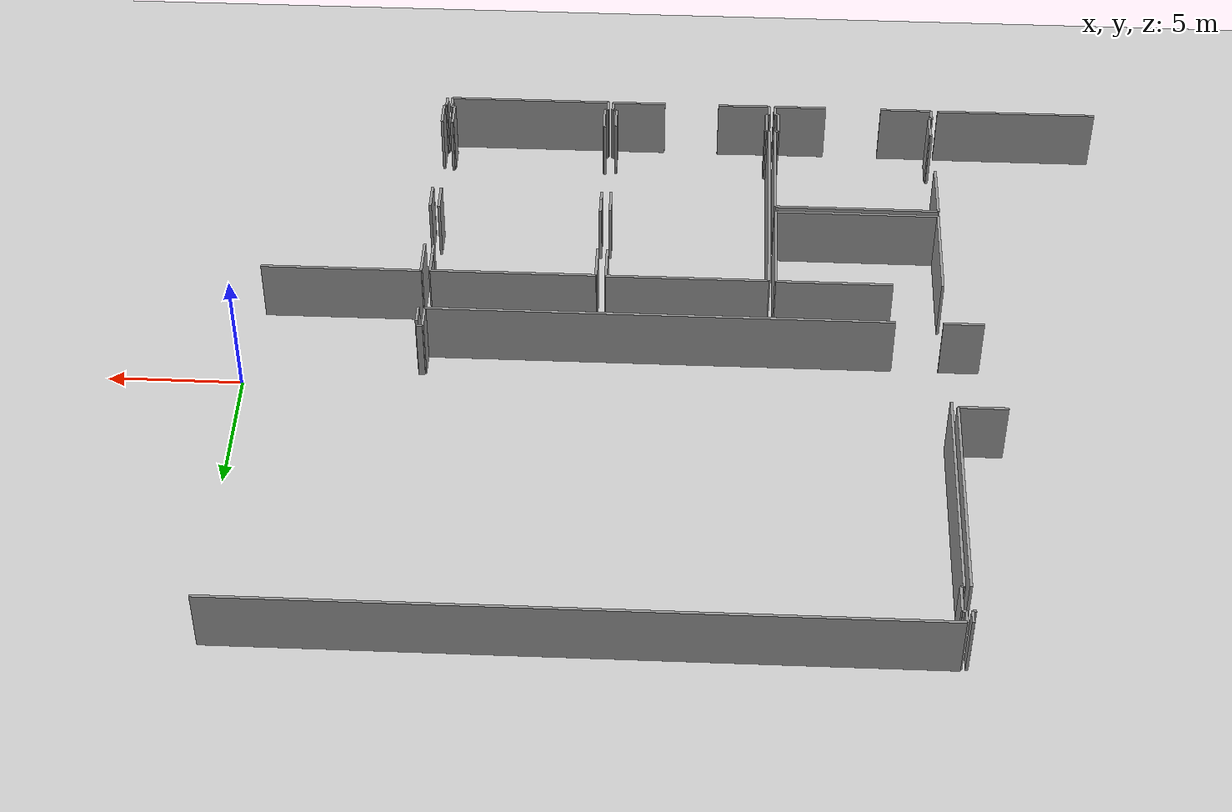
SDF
<sdf version="1.6">
 <world name="default">
  <model name="ground_plane">
   <static>1</static>
   <link name="link">
    <collision name="collision">
     <geometry><plane><normal>0 0 1</normal><size>100 100</size></plane></geometry>
     <surface><friction><ode><mu>100</mu><mu2>50</mu2></ode></friction></surface>
    </collision>
    <visual name="visual">
     <cast_shadows>0</cast_shadows>
     <geometry><plane><normal>0 0 1</normal><size>100 100</size></plane></geometry>
     <material>
      <script><uri>file://media/materials/scripts/gazebo.material</uri><name>Gazebo/Grey</name></script>
     </material>
    </visual>
   </link>
  </model>
  <model name="0510040941_A-40">
   <static>1</static>
   <link name="Wall_44">
    <collision name="Wall_44_Collision">
     <geometry><box><size>0.484485677868 0.1 2.5</size></box></geometry>
     <pose>0.242242838934 0 1.25 0 0 0</pose>
    </collision>
    <visual name="Wall_44_Visual">
     <pose>0.242242838934 0 1.25 0 0 0</pose>
     <geometry><box><size>0.484485677868 0.1 2.5</size></box></geometry>
     <material>
      <script><uri>file://media/materials/scripts/gazebo.material</uri><name>Gazebo/Grey</name></script>
      <ambient>1 1 1 1</ambient>
     </material>
    </visual>
    <pose>32.102756622 -0.0209267373948 0 0 0 -1.57079632679</pose>
   </link>
   <link name="Wall_45">
    <collision name="Wall_45_Collision">
     <geometry><box><size>0.128731142156 0.1 2.5</size></box></geometry>
     <pose>0.064365571078 0 1.25 0 0 0</pose>
    </collision>
    <visual name="Wall_45_Visual">
     <pose>0.064365571078 0 1.25 0 0 0</pose>
     <geometry><box><size>0.128731142156 0.1 2.5</size></box></geometry>
     <material>
      <script><uri>file://media/materials/scripts/gazebo.material</uri><name>Gazebo/Grey</name></script>
      <ambient>1 1 1 1</ambient>
     </material>
    </visual>
    <pose>32.102756622 -0.505412415263 0 0 0 3.14159265359</pose>
   </link>
   <link name="Wall_48">
    <collision name="Wall_48_Collision">
     <geometry><box><size>8.41064600204 0.1 2.5</size></box></geometry>
     <pose>4.20532300102 0 1.25 0 0 0</pose>
    </collision>
    <visual name="Wall_48_Visual">
     <pose>4.20532300102 0 1.25 0 0 0</pose>
     <geometry><box><size>8.41064600204 0.1 2.5</size></box></geometry>
     <material>
      <script><uri>file://media/materials/scripts/gazebo.material</uri><name>Gazebo/Grey</name></script>
      <ambient>1 1 1 1</ambient>
     </material>
    </visual>
    <pose>32.0952737281 -1.56531995713 0 0 0 -1.57079632679</pose>
   </link>
   <link name="Wall_49">
    <collision name="Wall_49_Collision">
     <geometry><box><size>1.80705548122 0.1 2.5</size></box></geometry>
     <pose>0.90352774061 0 1.25 0 0 0</pose>
    </collision>
    <visual name="Wall_49_Visual">
     <pose>0.90352774061 0 1.25 0 0 0</pose>
     <geometry><box><size>1.80705548122 0.1 2.5</size></box></geometry>
     <material>
      <script><uri>file://media/materials/scripts/gazebo.material</uri><name>Gazebo/Grey</name></script>
      <ambient>1 1 1 1</ambient>
     </material>
    </visual>
    <pose>32.0952737281 -9.97596595917 0 0 0 3.14159265359</pose>
   </link>
   <link name="Wall_55">
    <collision name="Wall_55_Collision">
     <geometry><box><size>8.65605955876 0.1 2.5</size></box></geometry>
     <pose>4.32802977938 0 1.25 0 0 0</pose>
    </collision>
    <visual name="Wall_55_Visual">
     <pose>4.32802977938 0 1.25 0 0 0</pose>
     <geometry><box><size>8.65605955876 0.1 2.5</size></box></geometry>
     <material>
      <script><uri>file://media/materials/scripts/gazebo.material</uri><name>Gazebo/Grey</name></script>
      <ambient>1 1 1 1</ambient>
     </material>
    </visual>
    <pose>32.3282580711 -10.2185892842 0 0 0 1.57079632679</pose>
   </link>
   <link name="Wall_56">
    <collision name="Wall_56_Collision">
     <geometry><box><size>0.109199520587 0.1 2.5</size></box></geometry>
     <pose>0.0545997602937 0 1.25 0 0 0</pose>
    </collision>
    <visual name="Wall_56_Visual">
     <pose>0.0545997602937 0 1.25 0 0 0</pose>
     <geometry><box><size>0.109199520587 0.1 2.5</size></box></geometry>
     <material>
      <script><uri>file://media/materials/scripts/gazebo.material</uri><name>Gazebo/Grey</name></script>
      <ambient>1 1 1 1</ambient>
     </material>
    </visual>
    <pose>32.3282580711 -1.56252972548 0 0 0 0.0</pose>
   </link>
   <link name="Wall_57">
    <collision name="Wall_57_Collision">
     <geometry><box><size>1.0591465696 0.1 2.5</size></box></geometry>
     <pose>0.5295732848 0 1.25 0 0 0</pose>
    </collision>
    <visual name="Wall_57_Visual">
     <pose>0.5295732848 0 1.25 0 0 0</pose>
     <geometry><box><size>1.0591465696 0.1 2.5</size></box></geometry>
     <material>
      <script><uri>file://media/materials/scripts/gazebo.material</uri><name>Gazebo/Grey</name></script>
      <ambient>1 1 1 1</ambient>
     </material>
    </visual>
    <pose>32.4374575916 -1.56252972548 0 0 0 1.57079632679</pose>
   </link>
   <link name="Wall_58">
    <collision name="Wall_58_Collision">
     <geometry><box><size>0.125053109523 0.1 2.5</size></box></geometry>
     <pose>0.0625265547615 0 1.25 0 0 0</pose>
    </collision>
    <visual name="Wall_58_Visual">
     <pose>0.0625265547615 0 1.25 0 0 0</pose>
     <geometry><box><size>0.125053109523 0.1 2.5</size></box></geometry>
     <material>
      <script><uri>file://media/materials/scripts/gazebo.material</uri><name>Gazebo/Grey</name></script>
      <ambient>1 1 1 1</ambient>
     </material>
    </visual>
    <pose>32.4374575916 -0.503383155879 0 0 0 3.14159265359</pose>
   </link>
   <link name="Wall_59">
    <collision name="Wall_59_Collision">
     <geometry><box><size>0.483597876887 0.1 2.5</size></box></geometry>
     <pose>0.241798938444 0 1.25 0 0 0</pose>
    </collision>
    <visual name="Wall_59_Visual">
     <pose>0.241798938444 0 1.25 0 0 0</pose>
     <geometry><box><size>0.483597876887 0.1 2.5</size></box></geometry>
     <material>
      <script><uri>file://media/materials/scripts/gazebo.material</uri><name>Gazebo/Grey</name></script>
      <ambient>1 1 1 1</ambient>
     </material>
    </visual>
    <pose>32.3124044821 -0.503383155879 0 0 0 1.57079632679</pose>
   </link>
   <link name="Wall_60">
    <collision name="Wall_60_Collision">
     <geometry><box><size>25.780599012 0.1 2.5</size></box></geometry>
     <pose>12.890299506 0 1.25 0 0 0</pose>
    </collision>
    <visual name="Wall_60_Visual">
     <pose>12.890299506 0 1.25 0 0 0</pose>
     <geometry><box><size>25.780599012 0.1 2.5</size></box></geometry>
     <material>
      <script><uri>file://media/materials/scripts/gazebo.material</uri><name>Gazebo/Grey</name></script>
      <ambient>1 1 1 1</ambient>
     </material>
    </visual>
    <pose>32.3124044821 -0.0197852789915 0 0 0 0.0</pose>
   </link>
   <link name="Wall_69">
    <collision name="Wall_69_Collision">
     <geometry><box><size>0.232096542015 0.1 2.5</size></box></geometry>
     <pose>0.116048271008 0 1.25 0 0 0</pose>
    </collision>
    <visual name="Wall_69_Visual">
     <pose>0.116048271008 0 1.25 0 0 0</pose>
     <geometry><box><size>0.232096542015 0.1 2.5</size></box></geometry>
     <material>
      <script><uri>file://media/materials/scripts/gazebo.material</uri><name>Gazebo/Grey</name></script>
      <ambient>1 1 1 1</ambient>
     </material>
    </visual>
    <pose>51.8033140342 -13.3179025068 0 0 0 3.14159265359</pose>
   </link>
   <link name="Wall_70">
    <collision name="Wall_70_Collision">
     <geometry><box><size>0.965546980525 0.1 2.5</size></box></geometry>
     <pose>0.482773490263 0 1.25 0 0 0</pose>
    </collision>
    <visual name="Wall_70_Visual">
     <pose>0.482773490263 0 1.25 0 0 0</pose>
     <geometry><box><size>0.965546980525 0.1 2.5</size></box></geometry>
     <material>
      <script><uri>file://media/materials/scripts/gazebo.material</uri><name>Gazebo/Grey</name></script>
      <ambient>1 1 1 1</ambient>
     </material>
    </visual>
    <pose>51.5712174922 -13.3179025068 0 0 0 -1.57079632679</pose>
   </link>
   <link name="Wall_71">
    <collision name="Wall_71_Collision">
     <geometry><box><size>17.3992504423 0.1 2.5</size></box></geometry>
     <pose>8.69962522116 0 1.25 0 0 0</pose>
    </collision>
    <visual name="Wall_71_Visual">
     <pose>8.69962522116 0 1.25 0 0 0</pose>
     <geometry><box><size>17.3992504423 0.1 2.5</size></box></geometry>
     <material>
      <script><uri>file://media/materials/scripts/gazebo.material</uri><name>Gazebo/Grey</name></script>
      <ambient>1 1 1 1</ambient>
     </material>
    </visual>
    <pose>51.5712174922 -14.2834494873 0 0 0 3.14159265359</pose>
   </link>
   <link name="Wall_72">
    <collision name="Wall_72_Collision">
     <geometry><box><size>1.51091043991 0.1 2.5</size></box></geometry>
     <pose>0.755455219953 0 1.25 0 0 0</pose>
    </collision>
    <visual name="Wall_72_Visual">
     <pose>0.755455219953 0 1.25 0 0 0</pose>
     <geometry><box><size>1.51091043991 0.1 2.5</size></box></geometry>
     <material>
      <script><uri>file://media/materials/scripts/gazebo.material</uri><name>Gazebo/Grey</name></script>
      <ambient>1 1 1 1</ambient>
     </material>
    </visual>
    <pose>32.4184332849 -14.2834494873 0 0 0 3.14159265359</pose>
   </link>
   <link name="Wall_86">
    <collision name="Wall_86_Collision">
     <geometry><box><size>6.25760179589 0.1 2.5</size></box></geometry>
     <pose>3.12880089795 0 1.25 0 0 0</pose>
    </collision>
    <visual name="Wall_86_Visual">
     <pose>3.12880089795 0 1.25 0 0 0</pose>
     <geometry><box><size>6.25760179589 0.1 2.5</size></box></geometry>
     <material>
      <script><uri>file://media/materials/scripts/gazebo.material</uri><name>Gazebo/Grey</name></script>
      <ambient>1 1 1 1</ambient>
     </material>
    </visual>
    <pose>32.0801811114 -26.6559707787 0 0 0 3.14159265359</pose>
   </link>
   <link name="Wall_91">
    <collision name="Wall_91_Collision">
     <geometry><box><size>3.9527436221 0.1 2.5</size></box></geometry>
     <pose>1.97637181105 0 1.25 0 0 0</pose>
    </collision>
    <visual name="Wall_91_Visual">
     <pose>1.97637181105 0 1.25 0 0 0</pose>
     <geometry><box><size>3.9527436221 0.1 2.5</size></box></geometry>
     <material>
      <script><uri>file://media/materials/scripts/gazebo.material</uri><name>Gazebo/Grey</name></script>
      <ambient>1 1 1 1</ambient>
     </material>
    </visual>
    <pose>32.3457604332 -20.2589842288 0 0 0 1.57079632679</pose>
   </link>
   <link name="Wall_92">
    <collision name="Wall_92_Collision">
     <geometry><box><size>4.38396124115 0.1 2.5</size></box></geometry>
     <pose>2.19198062057 0 1.25 0 0 0</pose>
    </collision>
    <visual name="Wall_92_Visual">
     <pose>2.19198062057 0 1.25 0 0 0</pose>
     <geometry><box><size>4.38396124115 0.1 2.5</size></box></geometry>
     <material>
      <script><uri>file://media/materials/scripts/gazebo.material</uri><name>Gazebo/Grey</name></script>
      <ambient>1 1 1 1</ambient>
     </material>
    </visual>
    <pose>34.1926401299 -16.3062406067 0 0 0 0.0</pose>
   </link>
   <link name="Wall_93">
    <collision name="Wall_93_Collision">
     <geometry><box><size>3.96111431706 0.1 2.5</size></box></geometry>
     <pose>1.98055715853 0 1.25 0 0 0</pose>
    </collision>
    <visual name="Wall_93_Visual">
     <pose>1.98055715853 0 1.25 0 0 0</pose>
     <geometry><box><size>3.96111431706 0.1 2.5</size></box></geometry>
     <material>
      <script><uri>file://media/materials/scripts/gazebo.material</uri><name>Gazebo/Grey</name></script>
      <ambient>1 1 1 1</ambient>
     </material>
    </visual>
    <pose>38.576601371 -16.3062406067 0 0 0 -1.57079632679</pose>
   </link>
   <link name="Wall_94">
    <collision name="Wall_94_Collision">
     <geometry><box><size>6.23084656049 0.1 2.5</size></box></geometry>
     <pose>3.11542328024 0 1.25 0 0 0</pose>
    </collision>
    <visual name="Wall_94_Visual">
     <pose>3.11542328024 0 1.25 0 0 0</pose>
     <geometry><box><size>6.23084656049 0.1 2.5</size></box></geometry>
     <material>
      <script><uri>file://media/materials/scripts/gazebo.material</uri><name>Gazebo/Grey</name></script>
      <ambient>1 1 1 1</ambient>
     </material>
    </visual>
    <pose>38.576601371 -20.2673549238 0 0 0 3.14024922499</pose>
   </link>
   <link name="Wall_95">
    <collision name="Wall_95_Collision">
     <geometry><box><size>6.26178714337 0.1 2.5</size></box></geometry>
     <pose>3.13089357169 0 1.25 0 0 0</pose>
    </collision>
    <visual name="Wall_95_Visual">
     <pose>3.13089357169 0 1.25 0 0 0</pose>
     <geometry><box><size>6.26178714337 0.1 2.5</size></box></geometry>
     <material>
      <script><uri>file://media/materials/scripts/gazebo.material</uri><name>Gazebo/Grey</name></script>
      <ambient>1 1 1 1</ambient>
     </material>
    </visual>
    <pose>32.3258483255 -20.563119479 0 0 0 0.0</pose>
   </link>
   <link name="Wall_96">
    <collision name="Wall_96_Collision">
     <geometry><box><size>4.55238977 0.1 2.5</size></box></geometry>
     <pose>2.276194885 0 1.25 0 0 0</pose>
    </collision>
    <visual name="Wall_96_Visual">
     <pose>2.276194885 0 1.25 0 0 0</pose>
     <geometry><box><size>4.55238977 0.1 2.5</size></box></geometry>
     <material>
      <script><uri>file://media/materials/scripts/gazebo.material</uri><name>Gazebo/Grey</name></script>
      <ambient>1 1 1 1</ambient>
     </material>
    </visual>
    <pose>38.5876354689 -20.563119479 0 0 0 -1.57079632679</pose>
   </link>
   <link name="Wall_97">
    <collision name="Wall_97_Collision">
     <geometry><box><size>0.11541412745 0.1 2.5</size></box></geometry>
     <pose>0.0577070637251 0 1.25 0 0 0</pose>
    </collision>
    <visual name="Wall_97_Visual">
     <pose>0.0577070637251 0 1.25 0 0 0</pose>
     <geometry><box><size>0.11541412745 0.1 2.5</size></box></geometry>
     <material>
      <script><uri>file://media/materials/scripts/gazebo.material</uri><name>Gazebo/Grey</name></script>
      <ambient>1 1 1 1</ambient>
     </material>
    </visual>
    <pose>38.5876354689 -25.115509249 0 0 0 3.14159265359</pose>
   </link>
   <link name="Wall_98">
    <collision name="Wall_98_Collision">
     <geometry><box><size>1.06751726456 0.1 2.5</size></box></geometry>
     <pose>0.533758632279 0 1.25 0 0 0</pose>
    </collision>
    <visual name="Wall_98_Visual">
     <pose>0.533758632279 0 1.25 0 0 0</pose>
     <geometry><box><size>1.06751726456 0.1 2.5</size></box></geometry>
     <material>
      <script><uri>file://media/materials/scripts/gazebo.material</uri><name>Gazebo/Grey</name></script>
      <ambient>1 1 1 1</ambient>
     </material>
    </visual>
    <pose>38.4722213415 -25.115509249 0 0 0 -1.57079632679</pose>
   </link>
   <link name="Wall_99">
    <collision name="Wall_99_Collision">
     <geometry><box><size>0.121755563024 0.1 2.5</size></box></geometry>
     <pose>0.0608777815122 0 1.25 0 0 0</pose>
    </collision>
    <visual name="Wall_99_Visual">
     <pose>0.0608777815122 0 1.25 0 0 0</pose>
     <geometry><box><size>0.121755563024 0.1 2.5</size></box></geometry>
     <material>
      <script><uri>file://media/materials/scripts/gazebo.material</uri><name>Gazebo/Grey</name></script>
      <ambient>1 1 1 1</ambient>
     </material>
    </visual>
    <pose>38.4722213415 -26.1830265135 0 0 0 0.0</pose>
   </link>
   <link name="Wall_100">
    <collision name="Wall_100_Collision">
     <geometry><box><size>0.491841743134 0.1 2.5</size></box></geometry>
     <pose>0.245920871567 0 1.25 0 0 0</pose>
    </collision>
    <visual name="Wall_100_Visual">
     <pose>0.245920871567 0 1.25 0 0 0</pose>
     <geometry><box><size>0.491841743134 0.1 2.5</size></box></geometry>
     <material>
      <script><uri>file://media/materials/scripts/gazebo.material</uri><name>Gazebo/Grey</name></script>
      <ambient>1 1 1 1</ambient>
     </material>
    </visual>
    <pose>38.5939769045 -26.1830265135 0 0 0 -1.57079632679</pose>
   </link>
   <link name="Wall_101">
    <collision name="Wall_101_Collision">
     <geometry><box><size>2.04308371329 0.1 2.5</size></box></geometry>
     <pose>1.02154185665 0 1.25 0 0 0</pose>
    </collision>
    <visual name="Wall_101_Visual">
     <pose>1.02154185665 0 1.25 0 0 0</pose>
     <geometry><box><size>2.04308371329 0.1 2.5</size></box></geometry>
     <material>
      <script><uri>file://media/materials/scripts/gazebo.material</uri><name>Gazebo/Grey</name></script>
      <ambient>1 1 1 1</ambient>
     </material>
    </visual>
    <pose>38.5939769045 -26.6748682567 0 0 0 3.14159265359</pose>
   </link>
   <link name="Wall_102">
    <collision name="Wall_102_Collision">
     <geometry><box><size>2.01771797099 0.1 2.5</size></box></geometry>
     <pose>1.0088589855 0 1.25 0 0 0</pose>
    </collision>
    <visual name="Wall_102_Visual">
     <pose>1.0088589855 0 1.25 0 0 0</pose>
     <geometry><box><size>2.01771797099 0.1 2.5</size></box></geometry>
     <material>
      <script><uri>file://media/materials/scripts/gazebo.material</uri><name>Gazebo/Grey</name></script>
      <ambient>1 1 1 1</ambient>
     </material>
    </visual>
    <pose>34.354346737 -26.6748682567 0 0 0 3.14159265359</pose>
   </link>
   <link name="Wall_103">
    <collision name="Wall_103_Collision">
     <geometry><box><size>0.495646604478 0.1 2.5</size></box></geometry>
     <pose>0.247823302239 0 1.25 0 0 0</pose>
    </collision>
    <visual name="Wall_103_Visual">
     <pose>0.247823302239 0 1.25 0 0 0</pose>
     <geometry><box><size>0.495646604478 0.1 2.5</size></box></geometry>
     <material>
      <script><uri>file://media/materials/scripts/gazebo.material</uri><name>Gazebo/Grey</name></script>
      <ambient>1 1 1 1</ambient>
     </material>
    </visual>
    <pose>32.336628766 -26.6748682567 0 0 0 1.57079632679</pose>
   </link>
   <link name="Wall_104">
    <collision name="Wall_104_Collision">
     <geometry><box><size>0.0986727375343 0.1 2.5</size></box></geometry>
     <pose>0.0493363687672 0 1.25 0 0 0</pose>
    </collision>
    <visual name="Wall_104_Visual">
     <pose>0.0493363687672 0 1.25 0 0 0</pose>
     <geometry><box><size>0.0986727375343 0.1 2.5</size></box></geometry>
     <material>
      <script><uri>file://media/materials/scripts/gazebo.material</uri><name>Gazebo/Grey</name></script>
      <ambient>1 1 1 1</ambient>
     </material>
    </visual>
    <pose>32.336628766 -26.1792216522 0 0 0 0.0</pose>
   </link>
   <link name="Wall_105">
    <collision name="Wall_105_Collision">
     <geometry><box><size>1.03022962338 0.1 2.5</size></box></geometry>
     <pose>0.515114811691 0 1.25 0 0 0</pose>
    </collision>
    <visual name="Wall_105_Visual">
     <pose>0.515114811691 0 1.25 0 0 0</pose>
     <geometry><box><size>1.03022962338 0.1 2.5</size></box></geometry>
     <material>
      <script><uri>file://media/materials/scripts/gazebo.material</uri><name>Gazebo/Grey</name></script>
      <ambient>1 1 1 1</ambient>
     </material>
    </visual>
    <pose>32.4353015036 -26.1792216522 0 0 0 1.57079632679</pose>
   </link>
   <link name="Wall_106">
    <collision name="Wall_106_Collision">
     <geometry><box><size>0.0965166494391 0.1 2.5</size></box></geometry>
     <pose>0.0482583247195 0 1.25 0 0 0</pose>
    </collision>
    <visual name="Wall_106_Visual">
     <pose>0.0482583247195 0 1.25 0 0 0</pose>
     <geometry><box><size>0.0965166494391 0.1 2.5</size></box></geometry>
     <material>
      <script><uri>file://media/materials/scripts/gazebo.material</uri><name>Gazebo/Grey</name></script>
      <ambient>1 1 1 1</ambient>
     </material>
    </visual>
    <pose>32.4353015036 -25.1489920288 0 0 0 3.14159265359</pose>
   </link>
   <link name="Wall_107">
    <collision name="Wall_107_Collision">
     <geometry><box><size>2.38847332855 0.1 2.5</size></box></geometry>
     <pose>1.19423666427 0 1.25 0 0 0</pose>
    </collision>
    <visual name="Wall_107_Visual">
     <pose>1.19423666427 0 1.25 0 0 0</pose>
     <geometry><box><size>2.38847332855 0.1 2.5</size></box></geometry>
     <material>
      <script><uri>file://media/materials/scripts/gazebo.material</uri><name>Gazebo/Grey</name></script>
      <ambient>1 1 1 1</ambient>
     </material>
    </visual>
    <pose>32.3387848541 -22.9515577736 0 0 0 1.57621258649</pose>
   </link>
   <link name="Wall_108">
    <collision name="Wall_108_Collision">
     <geometry><box><size>0.493110030249 0.1 2.5</size></box></geometry>
     <pose>0.246555015124 0 1.25 0 0 0</pose>
    </collision>
    <visual name="Wall_108_Visual">
     <pose>0.246555015124 0 1.25 0 0 0</pose>
     <geometry><box><size>0.493110030249 0.1 2.5</size></box></geometry>
     <material>
      <script><uri>file://media/materials/scripts/gazebo.material</uri><name>Gazebo/Grey</name></script>
      <ambient>1 1 1 1</ambient>
     </material>
    </visual>
    <pose>38.808697913 -26.6761365438 0 0 0 1.57079632679</pose>
   </link>
   <link name="Wall_109">
    <collision name="Wall_109_Collision">
     <geometry><box><size>0.130506744117 0.1 2.5</size></box></geometry>
     <pose>0.0652533720584 0 1.25 0 0 0</pose>
    </collision>
    <visual name="Wall_109_Visual">
     <pose>0.0652533720584 0 1.25 0 0 0</pose>
     <geometry><box><size>0.130506744117 0.1 2.5</size></box></geometry>
     <material>
      <script><uri>file://media/materials/scripts/gazebo.material</uri><name>Gazebo/Grey</name></script>
      <ambient>1 1 1 1</ambient>
     </material>
    </visual>
    <pose>38.808697913 -26.1830265135 0 0 0 0.0</pose>
   </link>
   <link name="Wall_110">
    <collision name="Wall_110_Collision">
     <geometry><box><size>1.0514100182 0.1 2.5</size></box></geometry>
     <pose>0.5257050091 0 1.25 0 0 0</pose>
    </collision>
    <visual name="Wall_110_Visual">
     <pose>0.5257050091 0 1.25 0 0 0</pose>
     <geometry><box><size>1.0514100182 0.1 2.5</size></box></geometry>
     <material>
      <script><uri>file://media/materials/scripts/gazebo.material</uri><name>Gazebo/Grey</name></script>
      <ambient>1 1 1 1</ambient>
     </material>
    </visual>
    <pose>38.9392046572 -26.1830265135 0 0 0 1.57079632679</pose>
   </link>
   <link name="Wall_111">
    <collision name="Wall_111_Collision">
     <geometry><box><size>0.101589797898 0.1 2.5</size></box></geometry>
     <pose>0.0507948989492 0 1.25 0 0 0</pose>
    </collision>
    <visual name="Wall_111_Visual">
     <pose>0.0507948989492 0 1.25 0 0 0</pose>
     <geometry><box><size>0.101589797898 0.1 2.5</size></box></geometry>
     <material>
      <script><uri>file://media/materials/scripts/gazebo.material</uri><name>Gazebo/Grey</name></script>
      <ambient>1 1 1 1</ambient>
     </material>
    </visual>
    <pose>38.9392046572 -25.1316164953 0 0 0 3.14159265359</pose>
   </link>
   <link name="Wall_112">
    <collision name="Wall_112_Collision">
     <geometry><box><size>8.8033076928 0.1 2.5</size></box></geometry>
     <pose>4.4016538464 0 1.25 0 0 0</pose>
    </collision>
    <visual name="Wall_112_Visual">
     <pose>4.4016538464 0 1.25 0 0 0</pose>
     <geometry><box><size>8.8033076928 0.1 2.5</size></box></geometry>
     <material>
      <script><uri>file://media/materials/scripts/gazebo.material</uri><name>Gazebo/Grey</name></script>
      <ambient>1 1 1 1</ambient>
     </material>
    </visual>
    <pose>38.8376148593 -25.1316164953 0 0 0 1.57079632679</pose>
   </link>
   <link name="Wall_113">
    <collision name="Wall_113_Collision">
     <geometry><box><size>6.1130170648 0.1 2.5</size></box></geometry>
     <pose>3.0565085324 0 1.25 0 0 0</pose>
    </collision>
    <visual name="Wall_113_Visual">
     <pose>3.0565085324 0 1.25 0 0 0</pose>
     <geometry><box><size>6.1130170648 0.1 2.5</size></box></geometry>
     <material>
      <script><uri>file://media/materials/scripts/gazebo.material</uri><name>Gazebo/Grey</name></script>
      <ambient>1 1 1 1</ambient>
     </material>
    </visual>
    <pose>38.8376148593 -16.3283088025 0 0 0 0.0</pose>
   </link>
   <link name="Wall_114">
    <collision name="Wall_114_Collision">
     <geometry><box><size>1.47933009075 0.1 2.5</size></box></geometry>
     <pose>0.739665045373 0 1.25 0 0 0</pose>
    </collision>
    <visual name="Wall_114_Visual">
     <pose>0.739665045373 0 1.25 0 0 0</pose>
     <geometry><box><size>1.47933009075 0.1 2.5</size></box></geometry>
     <material>
      <script><uri>file://media/materials/scripts/gazebo.material</uri><name>Gazebo/Grey</name></script>
      <ambient>1 1 1 1</ambient>
     </material>
    </visual>
    <pose>44.9506319241 -16.3283088025 0 0 0 -1.57079632679</pose>
   </link>
   <link name="Wall_115">
    <collision name="Wall_115_Collision">
     <geometry><box><size>1.07804404761 0.1 2.5</size></box></geometry>
     <pose>0.539022023806 0 1.25 0 0 0</pose>
    </collision>
    <visual name="Wall_115_Visual">
     <pose>0.539022023806 0 1.25 0 0 0</pose>
     <geometry><box><size>1.07804404761 0.1 2.5</size></box></geometry>
     <material>
      <script><uri>file://media/materials/scripts/gazebo.material</uri><name>Gazebo/Grey</name></script>
      <ambient>1 1 1 1</ambient>
     </material>
    </visual>
    <pose>44.9506319241 -20.037794956 0 0 0 -1.57079632679</pose>
   </link>
   <link name="Wall_116">
    <collision name="Wall_116_Collision">
     <geometry><box><size>0.995985871282 0.1 2.5</size></box></geometry>
     <pose>0.497992935641 0 1.25 0 0 0</pose>
    </collision>
    <visual name="Wall_116_Visual">
     <pose>0.497992935641 0 1.25 0 0 0</pose>
     <geometry><box><size>0.995985871282 0.1 2.5</size></box></geometry>
     <material>
      <script><uri>file://media/materials/scripts/gazebo.material</uri><name>Gazebo/Grey</name></script>
      <ambient>1 1 1 1</ambient>
     </material>
    </visual>
    <pose>44.9506319241 -25.1870406423 0 0 0 -1.57079632679</pose>
   </link>
   <link name="Wall_117">
    <collision name="Wall_117_Collision">
     <geometry><box><size>0.152321282492 0.1 2.5</size></box></geometry>
     <pose>0.076160641246 0 1.25 0 0 0</pose>
    </collision>
    <visual name="Wall_117_Visual">
     <pose>0.076160641246 0 1.25 0 0 0</pose>
     <geometry><box><size>0.152321282492 0.1 2.5</size></box></geometry>
     <material>
      <script><uri>file://media/materials/scripts/gazebo.material</uri><name>Gazebo/Grey</name></script>
      <ambient>1 1 1 1</ambient>
     </material>
    </visual>
    <pose>44.9506319241 -26.1830265135 0 0 0 0.0</pose>
   </link>
   <link name="Wall_118">
    <collision name="Wall_118_Collision">
     <geometry><box><size>0.471422320585 0.1 2.5</size></box></geometry>
     <pose>0.235711160292 0 1.25 0 0 0</pose>
    </collision>
    <visual name="Wall_118_Visual">
     <pose>0.235711160292 0 1.25 0 0 0</pose>
     <geometry><box><size>0.471422320585 0.1 2.5</size></box></geometry>
     <material>
      <script><uri>file://media/materials/scripts/gazebo.material</uri><name>Gazebo/Grey</name></script>
      <ambient>1 1 1 1</ambient>
     </material>
    </visual>
    <pose>45.1029532065 -26.1830265135 0 0 0 -1.57079632679</pose>
   </link>
   <link name="Wall_119">
    <collision name="Wall_119_Collision">
     <geometry><box><size>2.088488392 0.1 2.5</size></box></geometry>
     <pose>1.044244196 0 1.25 0 0 0</pose>
    </collision>
    <visual name="Wall_119_Visual">
     <pose>1.044244196 0 1.25 0 0 0</pose>
     <geometry><box><size>2.088488392 0.1 2.5</size></box></geometry>
     <material>
      <script><uri>file://media/materials/scripts/gazebo.material</uri><name>Gazebo/Grey</name></script>
      <ambient>1 1 1 1</ambient>
     </material>
    </visual>
    <pose>45.1029532065 -26.6544488341 0 0 0 3.14159265359</pose>
   </link>
   <link name="Wall_120">
    <collision name="Wall_120_Collision">
     <geometry><box><size>2.055373694 0.1 2.5</size></box></geometry>
     <pose>1.027686847 0 1.25 0 0 0</pose>
    </collision>
    <visual name="Wall_120_Visual">
     <pose>1.027686847 0 1.25 0 0 0</pose>
     <geometry><box><size>2.055373694 0.1 2.5</size></box></geometry>
     <material>
      <script><uri>file://media/materials/scripts/gazebo.material</uri><name>Gazebo/Grey</name></script>
      <ambient>1 1 1 1</ambient>
     </material>
    </visual>
    <pose>40.8639571826 -26.6544488341 0 0 0 -3.13104074656</pose>
   </link>
   <link name="Wall_121">
    <collision name="Wall_121_Collision">
     <geometry><box><size>0.66166538781 0.1 2.5</size></box></geometry>
     <pose>0.330832693905 0 1.25 0 0 0</pose>
    </collision>
    <visual name="Wall_121_Visual">
     <pose>0.330832693905 0 1.25 0 0 0</pose>
     <geometry><box><size>0.66166538781 0.1 2.5</size></box></geometry>
     <material>
      <script><uri>file://media/materials/scripts/gazebo.material</uri><name>Gazebo/Grey</name></script>
      <ambient>1 1 1 1</ambient>
     </material>
    </visual>
    <pose>45.3218595626 -20.6686409669 0 0 0 1.57079632679</pose>
   </link>
   <link name="Wall_122">
    <collision name="Wall_122_Collision">
     <geometry><box><size>1.47286182646 0.1 2.5</size></box></geometry>
     <pose>0.73643091323 0 1.25 0 0 0</pose>
    </collision>
    <visual name="Wall_122_Visual">
     <pose>0.73643091323 0 1.25 0 0 0</pose>
     <geometry><box><size>1.47286182646 0.1 2.5</size></box></geometry>
     <material>
      <script><uri>file://media/materials/scripts/gazebo.material</uri><name>Gazebo/Grey</name></script>
      <ambient>1 1 1 1</ambient>
     </material>
    </visual>
    <pose>45.3218595626 -17.8156291021 0 0 0 1.57079632679</pose>
   </link>
   <link name="Wall_123">
    <collision name="Wall_123_Collision">
     <geometry><box><size>6.24415795248 0.1 2.5</size></box></geometry>
     <pose>3.12207897624 0 1.25 0 0 0</pose>
    </collision>
    <visual name="Wall_123_Visual">
     <pose>3.12207897624 0 1.25 0 0 0</pose>
     <geometry><box><size>6.24415795248 0.1 2.5</size></box></geometry>
     <material>
      <script><uri>file://media/materials/scripts/gazebo.material</uri><name>Gazebo/Grey</name></script>
      <ambient>1 1 1 1</ambient>
     </material>
    </visual>
    <pose>45.3218595626 -16.3427672757 0 0 0 0.0</pose>
   </link>
   <link name="Wall_124">
    <collision name="Wall_124_Collision">
     <geometry><box><size>0.964532350834 0.1 2.5</size></box></geometry>
     <pose>0.482266175417 0 1.25 0 0 0</pose>
    </collision>
    <visual name="Wall_124_Visual">
     <pose>0.482266175417 0 1.25 0 0 0</pose>
     <geometry><box><size>0.964532350834 0.1 2.5</size></box></geometry>
     <material>
      <script><uri>file://media/materials/scripts/gazebo.material</uri><name>Gazebo/Grey</name></script>
      <ambient>1 1 1 1</ambient>
     </material>
    </visual>
    <pose>51.566017515 -16.3427672757 0 0 0 -1.57079632679</pose>
   </link>
   <link name="Wall_125">
    <collision name="Wall_125_Collision">
     <geometry><box><size>0.498690493554 0.1 2.5</size></box></geometry>
     <pose>0.249345246777 0 1.25 0 0 0</pose>
    </collision>
    <visual name="Wall_125_Visual">
     <pose>0.249345246777 0 1.25 0 0 0</pose>
     <geometry><box><size>0.498690493554 0.1 2.5</size></box></geometry>
     <material>
      <script><uri>file://media/materials/scripts/gazebo.material</uri><name>Gazebo/Grey</name></script>
      <ambient>1 1 1 1</ambient>
     </material>
    </visual>
    <pose>51.566017515 -17.3072996265 0 0 0 -1.57079632679</pose>
   </link>
   <link name="Wall_126">
    <collision name="Wall_126_Collision">
     <geometry><box><size>1.10911708193 0.1 2.5</size></box></geometry>
     <pose>0.554558540963 0 1.25 0 0 0</pose>
    </collision>
    <visual name="Wall_126_Visual">
     <pose>0.554558540963 0 1.25 0 0 0</pose>
     <geometry><box><size>1.10911708193 0.1 2.5</size></box></geometry>
     <material>
      <script><uri>file://media/materials/scripts/gazebo.material</uri><name>Gazebo/Grey</name></script>
      <ambient>1 1 1 1</ambient>
     </material>
    </visual>
    <pose>51.566017515 -20.0005073148 0 0 0 -1.57079632679</pose>
   </link>
   <link name="Wall_127">
    <collision name="Wall_127_Collision">
     <geometry><box><size>0.0960093345932 0.1 2.5</size></box></geometry>
     <pose>0.0480046672966 0 1.25 0 0 0</pose>
    </collision>
    <visual name="Wall_127_Visual">
     <pose>0.0480046672966 0 1.25 0 0 0</pose>
     <geometry><box><size>0.0960093345932 0.1 2.5</size></box></geometry>
     <material>
      <script><uri>file://media/materials/scripts/gazebo.material</uri><name>Gazebo/Grey</name></script>
      <ambient>1 1 1 1</ambient>
     </material>
    </visual>
    <pose>51.566017515 -25.1520359179 0 0 0 3.14159265359</pose>
   </link>
   <link name="Wall_128">
    <collision name="Wall_128_Collision">
     <geometry><box><size>0.999790732626 0.1 2.5</size></box></geometry>
     <pose>0.499895366313 0 1.25 0 0 0</pose>
    </collision>
    <visual name="Wall_128_Visual">
     <pose>0.499895366313 0 1.25 0 0 0</pose>
     <geometry><box><size>0.999790732626 0.1 2.5</size></box></geometry>
     <material>
      <script><uri>file://media/materials/scripts/gazebo.material</uri><name>Gazebo/Grey</name></script>
      <ambient>1 1 1 1</ambient>
     </material>
    </visual>
    <pose>51.4700081805 -25.1520359179 0 0 0 -1.57079632679</pose>
   </link>
   <link name="Wall_129">
    <collision name="Wall_129_Collision">
     <geometry><box><size>0.123404336274 0.1 2.5</size></box></geometry>
     <pose>0.0617021681368 0 1.25 0 0 0</pose>
    </collision>
    <visual name="Wall_129_Visual">
     <pose>0.0617021681368 0 1.25 0 0 0</pose>
     <geometry><box><size>0.123404336274 0.1 2.5</size></box></geometry>
     <material>
      <script><uri>file://media/materials/scripts/gazebo.material</uri><name>Gazebo/Grey</name></script>
      <ambient>1 1 1 1</ambient>
     </material>
    </visual>
    <pose>51.4700081805 -26.1518266505 0 0 0 0.0</pose>
   </link>
   <link name="Wall_130">
    <collision name="Wall_130_Collision">
     <geometry><box><size>0.509851420164 0.1 2.5</size></box></geometry>
     <pose>0.254925710082 0 1.25 0 0 0</pose>
    </collision>
    <visual name="Wall_130_Visual">
     <pose>0.254925710082 0 1.25 0 0 0</pose>
     <geometry><box><size>0.509851420164 0.1 2.5</size></box></geometry>
     <material>
      <script><uri>file://media/materials/scripts/gazebo.material</uri><name>Gazebo/Grey</name></script>
      <ambient>1 1 1 1</ambient>
     </material>
    </visual>
    <pose>51.5934125167 -26.1518266505 0 0 0 -1.57079632679</pose>
   </link>
   <link name="Wall_131">
    <collision name="Wall_131_Collision">
     <geometry><box><size>6.2929870064 0.1 2.5</size></box></geometry>
     <pose>3.1464935032 0 1.25 0 0 0</pose>
    </collision>
    <visual name="Wall_131_Visual">
     <pose>3.1464935032 0 1.25 0 0 0</pose>
     <geometry><box><size>6.2929870064 0.1 2.5</size></box></geometry>
     <material>
      <script><uri>file://media/materials/scripts/gazebo.material</uri><name>Gazebo/Grey</name></script>
      <ambient>1 1 1 1</ambient>
     </material>
    </visual>
    <pose>51.5934125167 -26.6616780707 0 0 0 3.14159265359</pose>
   </link>
   <link name="Wall_132">
    <collision name="Wall_132_Collision">
     <geometry><box><size>0.475988154198 0.1 2.5</size></box></geometry>
     <pose>0.237994077099 0 1.25 0 0 0</pose>
    </collision>
    <visual name="Wall_132_Visual">
     <pose>0.237994077099 0 1.25 0 0 0</pose>
     <geometry><box><size>0.475988154198 0.1 2.5</size></box></geometry>
     <material>
      <script><uri>file://media/materials/scripts/gazebo.material</uri><name>Gazebo/Grey</name></script>
      <ambient>1 1 1 1</ambient>
     </material>
    </visual>
    <pose>45.3004255103 -26.6616780707 0 0 0 1.57079632679</pose>
   </link>
   <link name="Wall_133">
    <collision name="Wall_133_Collision">
     <geometry><box><size>0.119218988795 0.1 2.5</size></box></geometry>
     <pose>0.0596094943973 0 1.25 0 0 0</pose>
    </collision>
    <visual name="Wall_133_Visual">
     <pose>0.0596094943973 0 1.25 0 0 0</pose>
     <geometry><box><size>0.119218988795 0.1 2.5</size></box></geometry>
     <material>
      <script><uri>file://media/materials/scripts/gazebo.material</uri><name>Gazebo/Grey</name></script>
      <ambient>1 1 1 1</ambient>
     </material>
    </visual>
    <pose>45.3004255103 -26.1856899165 0 0 0 0.0</pose>
   </link>
   <link name="Wall_134">
    <collision name="Wall_134_Collision">
     <geometry><box><size>1.04278566582 0.1 2.5</size></box></geometry>
     <pose>0.52139283291 0 1.25 0 0 0</pose>
    </collision>
    <visual name="Wall_134_Visual">
     <pose>0.52139283291 0 1.25 0 0 0</pose>
     <geometry><box><size>1.04278566582 0.1 2.5</size></box></geometry>
     <material>
      <script><uri>file://media/materials/scripts/gazebo.material</uri><name>Gazebo/Grey</name></script>
      <ambient>1 1 1 1</ambient>
     </material>
    </visual>
    <pose>45.4196444991 -26.1856899165 0 0 0 1.57079632679</pose>
   </link>
   <link name="Wall_135">
    <collision name="Wall_135_Collision">
     <geometry><box><size>0.0989263949573 0.1 2.5</size></box></geometry>
     <pose>0.0494631974787 0 1.25 0 0 0</pose>
    </collision>
    <visual name="Wall_135_Visual">
     <pose>0.0494631974787 0 1.25 0 0 0</pose>
     <geometry><box><size>0.0989263949573 0.1 2.5</size></box></geometry>
     <material>
      <script><uri>file://media/materials/scripts/gazebo.material</uri><name>Gazebo/Grey</name></script>
      <ambient>1 1 1 1</ambient>
     </material>
    </visual>
    <pose>45.4196444991 -25.1429042507 0 0 0 3.14159265359</pose>
   </link>
   <link name="Wall_136">
    <collision name="Wall_136_Collision">
     <geometry><box><size>0.44922874626 0.1 2.5</size></box></geometry>
     <pose>0.22461437313 0 1.25 0 0 0</pose>
    </collision>
    <visual name="Wall_136_Visual">
     <pose>0.22461437313 0 1.25 0 0 0</pose>
     <geometry><box><size>0.44922874626 0.1 2.5</size></box></geometry>
     <material>
      <script><uri>file://media/materials/scripts/gazebo.material</uri><name>Gazebo/Grey</name></script>
      <ambient>1 1 1 1</ambient>
     </material>
    </visual>
    <pose>45.3207181042 -21.117868263 0 0 0 1.56825539494</pose>
   </link>
   <link name="Wall_137">
    <collision name="Wall_137_Collision">
     <geometry><box><size>1.07398552884 0.1 2.5</size></box></geometry>
     <pose>0.536992764422 0 1.25 0 0 0</pose>
    </collision>
    <visual name="Wall_137_Visual">
     <pose>0.536992764422 0 1.25 0 0 0</pose>
     <geometry><box><size>1.07398552884 0.1 2.5</size></box></geometry>
     <material>
      <script><uri>file://media/materials/scripts/gazebo.material</uri><name>Gazebo/Grey</name></script>
      <ambient>1 1 1 1</ambient>
     </material>
    </visual>
    <pose>51.9016062856 -21.1049317344 0 0 0 1.57079632679</pose>
   </link>
   <link name="Wall_138">
    <collision name="Wall_138_Collision">
     <geometry><box><size>1.51154458346 0.1 2.5</size></box></geometry>
     <pose>0.755772291731 0 1.25 0 0 0</pose>
    </collision>
    <visual name="Wall_138_Visual">
     <pose>0.755772291731 0 1.25 0 0 0</pose>
     <geometry><box><size>1.51154458346 0.1 2.5</size></box></geometry>
     <material>
      <script><uri>file://media/materials/scripts/gazebo.material</uri><name>Gazebo/Grey</name></script>
      <ambient>1 1 1 1</ambient>
     </material>
    </visual>
    <pose>51.9016062856 -17.8322436633 0 0 0 1.57079632679</pose>
   </link>
   <link name="Wall_139">
    <collision name="Wall_139_Collision">
     <geometry><box><size>6.05378805654 0.1 2.5</size></box></geometry>
     <pose>3.02689402827 0 1.25 0 0 0</pose>
    </collision>
    <visual name="Wall_139_Visual">
     <pose>3.02689402827 0 1.25 0 0 0</pose>
     <geometry><box><size>6.05378805654 0.1 2.5</size></box></geometry>
     <material>
      <script><uri>file://media/materials/scripts/gazebo.material</uri><name>Gazebo/Grey</name></script>
      <ambient>1 1 1 1</ambient>
     </material>
    </visual>
    <pose>51.9016062856 -16.3206990799 0 0 0 0.0</pose>
   </link>
   <link name="Wall_146">
    <collision name="Wall_146_Collision">
     <geometry><box><size>0.475988154198 0.1 2.5</size></box></geometry>
     <pose>0.237994077099 0 1.25 0 0 0</pose>
    </collision>
    <visual name="Wall_146_Visual">
     <pose>0.237994077099 0 1.25 0 0 0</pose>
     <geometry><box><size>0.475988154198 0.1 2.5</size></box></geometry>
     <material>
      <script><uri>file://media/materials/scripts/gazebo.material</uri><name>Gazebo/Grey</name></script>
      <ambient>1 1 1 1</ambient>
     </material>
    </visual>
    <pose>51.7986213719 -26.6568585796 0 0 0 1.57079632679</pose>
   </link>
   <link name="Wall_147">
    <collision name="Wall_147_Collision">
     <geometry><box><size>0.104506858263 0.1 2.5</size></box></geometry>
     <pose>0.0522534291313 0 1.25 0 0 0</pose>
    </collision>
    <visual name="Wall_147_Visual">
     <pose>0.0522534291313 0 1.25 0 0 0</pose>
     <geometry><box><size>0.104506858263 0.1 2.5</size></box></geometry>
     <material>
      <script><uri>file://media/materials/scripts/gazebo.material</uri><name>Gazebo/Grey</name></script>
      <ambient>1 1 1 1</ambient>
     </material>
    </visual>
    <pose>51.7986213719 -26.1808704254 0 0 0 0.0</pose>
   </link>
   <link name="Wall_148">
    <collision name="Wall_148_Collision">
     <geometry><box><size>0.00431217619045 0.1 2.5</size></box></geometry>
     <pose>0.00215608809523 0 1.25 0 0 0</pose>
    </collision>
    <visual name="Wall_148_Visual">
     <pose>0.00215608809523 0 1.25 0 0 0</pose>
     <geometry><box><size>0.00431217619045 0.1 2.5</size></box></geometry>
     <material>
      <script><uri>file://media/materials/scripts/gazebo.material</uri><name>Gazebo/Grey</name></script>
      <ambient>1 1 1 1</ambient>
     </material>
    </visual>
    <pose>51.9031282302 -26.1808704254 0 0 0 3.14159265359</pose>
   </link>
   <link name="Wall_149">
    <collision name="Wall_149_Collision">
     <geometry><box><size>0.99332246834 0.1 2.5</size></box></geometry>
     <pose>0.49666123417 0 1.25 0 0 0</pose>
    </collision>
    <visual name="Wall_149_Visual">
     <pose>0.49666123417 0 1.25 0 0 0</pose>
     <geometry><box><size>0.99332246834 0.1 2.5</size></box></geometry>
     <material>
      <script><uri>file://media/materials/scripts/gazebo.material</uri><name>Gazebo/Grey</name></script>
      <ambient>1 1 1 1</ambient>
     </material>
    </visual>
    <pose>51.898816054 -26.1808704254 0 0 0 1.57079632679</pose>
   </link>
   <link name="Wall_150">
    <collision name="Wall_150_Collision">
     <geometry><box><size>0.0384037673455 0.1 2.5</size></box></geometry>
     <pose>0.0192018836727 0 1.25 0 0 0</pose>
    </collision>
    <visual name="Wall_150_Visual">
     <pose>0.0192018836727 0 1.25 0 0 0</pose>
     <geometry><box><size>0.0384037673455 0.1 2.5</size></box></geometry>
     <material>
      <script><uri>file://media/materials/scripts/gazebo.material</uri><name>Gazebo/Grey</name></script>
      <ambient>1 1 1 1</ambient>
     </material>
    </visual>
    <pose>51.898816054 -21.1432340053 0 0 0 1.49807709824</pose>
   </link>
   <link name="Wall_151">
    <collision name="Wall_151_Collision">
     <geometry><box><size>0.742201619603 0.1 2.5</size></box></geometry>
     <pose>0.371100809801 0 1.25 0 0 0</pose>
    </collision>
    <visual name="Wall_151_Visual">
     <pose>0.371100809801 0 1.25 0 0 0</pose>
     <geometry><box><size>0.742201619603 0.1 2.5</size></box></geometry>
     <material>
      <script><uri>file://media/materials/scripts/gazebo.material</uri><name>Gazebo/Grey</name></script>
      <ambient>1 1 1 1</ambient>
     </material>
    </visual>
    <pose>51.8177725073 -14.3131274058 0 0 0 1.57079632679</pose>
   </link>
   <pose>-58.35 12.5394713145 0 0 0 0</pose>
  </model>
 </world>
</sdf>
